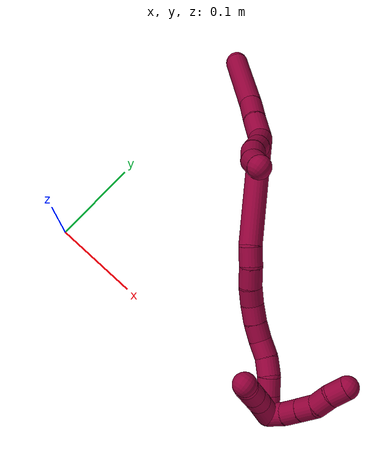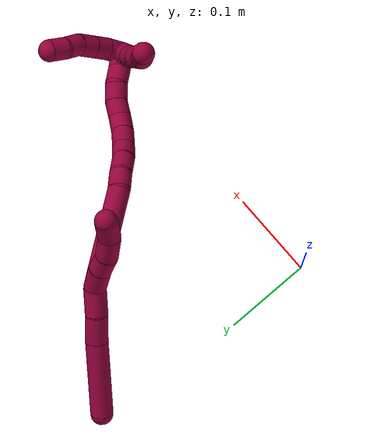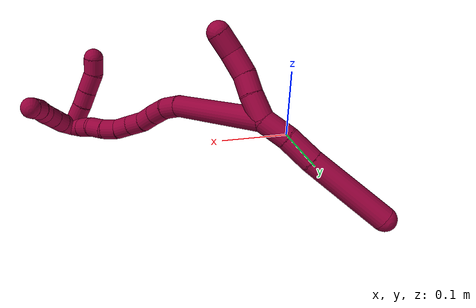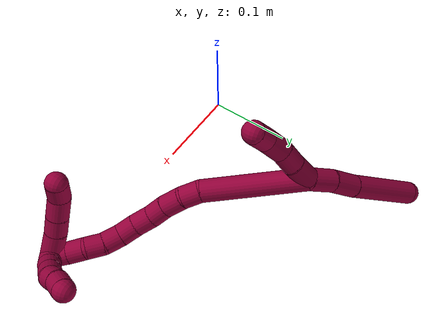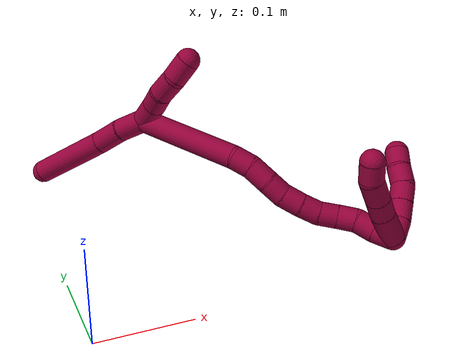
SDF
<sdf version="1.7">
 <world name="default">
  <model name="8">
   <static>0</static>
   <link name="8">
    <collision name="collision-cylinder-e_1_2_8">
     <pose>0.000574 0.012163 0.009348 -0.915533 0.037408 -0.018431</pose>
     <geometry><cylinder><radius>0.0125</radius><length>0.030701</length></cylinder></geometry>
     <surface>
      <friction><ode><mu>1.16</mu><mu2>1.16</mu2><slip1>0</slip1><slip2>0</slip2></ode></friction>
      <contact><ode><kp>1e+06</kp><kd>1</kd><max_vel>0</max_vel><min_depth>0.001</min_depth></ode></contact>
     </surface>
    </collision>
    <visual name="visual-cylinder-e_1_2_8">
     <pose>0.000574 0.012163 0.009348 -0.915533 0.037408 -0.018431</pose>
     <geometry><cylinder><radius>0.0125</radius><length>0.030701</length></cylinder></geometry>
     <material><ambient>0.584314 0 0.227451 1</ambient></material>
    </visual>
    <collision name="collision-cylinder-e_2_8_9">
     <pose>0.003992 0.03691 0.028366 -0.915583 0.177295 -0.087527</pose>
     <geometry><cylinder><radius>0.0125</radius><length>0.032246</length></cylinder></geometry>
     <surface>
      <friction><ode><mu>1.16</mu><mu2>1.16</mu2><slip1>0</slip1><slip2>0</slip2></ode></friction>
      <contact><ode><kp>1e+06</kp><kd>1</kd><max_vel>0</max_vel><min_depth>0.001</min_depth></ode></contact>
     </surface>
    </collision>
    <visual name="visual-cylinder-e_2_8_9">
     <pose>0.003992 0.03691 0.028366 -0.915583 0.177295 -0.087527</pose>
     <geometry><cylinder><radius>0.0125</radius><length>0.032246</length></cylinder></geometry>
     <material><ambient>0.584314 0 0.227451 1</ambient></material>
    </visual>
    <collision name="collision-cylinder-e_3_9_6">
     <pose>0.011055 0.08464 0.063363 -0.946366 0.097092 -0.049738</pose>
     <geometry><cylinder><radius>0.0125</radius><length>0.087052</length></cylinder></geometry>
     <surface>
      <friction><ode><mu>1.16</mu><mu2>1.16</mu2><slip1>0</slip1><slip2>0</slip2></ode></friction>
      <contact><ode><kp>1e+06</kp><kd>1</kd><max_vel>0</max_vel><min_depth>0.001</min_depth></ode></contact>
     </surface>
    </collision>
    <visual name="visual-cylinder-e_3_9_6">
     <pose>0.011055 0.08464 0.063363 -0.946366 0.097092 -0.049738</pose>
     <geometry><cylinder><radius>0.0125</radius><length>0.087052</length></cylinder></geometry>
     <material><ambient>0.584314 0 0.227451 1</ambient></material>
    </visual>
    <collision name="collision-cylinder-e_1_2_10">
     <pose>-0.007392 -0.008626 -0.007904 2.31255 -0.563462 -1.16363</pose>
     <geometry><cylinder><radius>0.0125</radius><length>0.027679</length></cylinder></geometry>
     <surface>
      <friction><ode><mu>1.16</mu><mu2>1.16</mu2><slip1>0</slip1><slip2>0</slip2></ode></friction>
      <contact><ode><kp>1e+06</kp><kd>1</kd><max_vel>0</max_vel><min_depth>0.001</min_depth></ode></contact>
     </surface>
    </collision>
    <visual name="visual-cylinder-e_1_2_10">
     <pose>-0.007392 -0.008626 -0.007904 2.31255 -0.563462 -1.16363</pose>
     <geometry><cylinder><radius>0.0125</radius><length>0.027679</length></cylinder></geometry>
     <material><ambient>0.584314 0 0.227451 1</ambient></material>
    </visual>
    <collision name="collision-cylinder-e_2_10_11">
     <pose>-0.021328 -0.023004 -0.022411 2.42499 -0.641821 -1.45192</pose>
     <geometry><cylinder><radius>0.0125</radius><length>0.021863</length></cylinder></geometry>
     <surface>
      <friction><ode><mu>1.16</mu><mu2>1.16</mu2><slip1>0</slip1><slip2>0</slip2></ode></friction>
      <contact><ode><kp>1e+06</kp><kd>1</kd><max_vel>0</max_vel><min_depth>0.001</min_depth></ode></contact>
     </surface>
    </collision>
    <visual name="visual-cylinder-e_2_10_11">
     <pose>-0.021328 -0.023004 -0.022411 2.42499 -0.641821 -1.45192</pose>
     <geometry><cylinder><radius>0.0125</radius><length>0.021863</length></cylinder></geometry>
     <material><ambient>0.584314 0 0.227451 1</ambient></material>
    </visual>
    <collision name="collision-cylinder-e_3_11_12">
     <pose>-0.033598 -0.037924 -0.036285 2.24127 -0.455049 -0.893604</pose>
     <geometry><cylinder><radius>0.0125</radius><length>0.026056</length></cylinder></geometry>
     <surface>
      <friction><ode><mu>1.16</mu><mu2>1.16</mu2><slip1>0</slip1><slip2>0</slip2></ode></friction>
      <contact><ode><kp>1e+06</kp><kd>1</kd><max_vel>0</max_vel><min_depth>0.001</min_depth></ode></contact>
     </surface>
    </collision>
    <visual name="visual-cylinder-e_3_11_12">
     <pose>-0.033598 -0.037924 -0.036285 2.24127 -0.455049 -0.893604</pose>
     <geometry><cylinder><radius>0.0125</radius><length>0.026056</length></cylinder></geometry>
     <material><ambient>0.584314 0 0.227451 1</ambient></material>
    </visual>
    <collision name="collision-cylinder-e_4_12_5">
     <pose>-0.044293 -0.057517 -0.047497 1.9322 -0.419429 -0.597556</pose>
     <geometry><cylinder><radius>0.0125</radius><length>0.024402</length></cylinder></geometry>
     <surface>
      <friction><ode><mu>1.16</mu><mu2>1.16</mu2><slip1>0</slip1><slip2>0</slip2></ode></friction>
      <contact><ode><kp>1e+06</kp><kd>1</kd><max_vel>0</max_vel><min_depth>0.001</min_depth></ode></contact>
     </surface>
    </collision>
    <visual name="visual-cylinder-e_4_12_5">
     <pose>-0.044293 -0.057517 -0.047497 1.9322 -0.419429 -0.597556</pose>
     <geometry><cylinder><radius>0.0125</radius><length>0.024402</length></cylinder></geometry>
     <material><ambient>0.584314 0 0.227451 1</ambient></material>
    </visual>
    <collision name="collision-cylinder-e_1_2_13">
     <pose>0.022738 -0.019635 -0.048776 2.75888 0.40816 1.63684</pose>
     <geometry><cylinder><radius>0.0125</radius><length>0.114572</length></cylinder></geometry>
     <surface>
      <friction><ode><mu>1.16</mu><mu2>1.16</mu2><slip1>0</slip1><slip2>0</slip2></ode></friction>
      <contact><ode><kp>1e+06</kp><kd>1</kd><max_vel>0</max_vel><min_depth>0.001</min_depth></ode></contact>
     </surface>
    </collision>
    <visual name="visual-cylinder-e_1_2_13">
     <pose>0.022738 -0.019635 -0.048776 2.75888 0.40816 1.63684</pose>
     <geometry><cylinder><radius>0.0125</radius><length>0.114572</length></cylinder></geometry>
     <material><ambient>0.584314 0 0.227451 1</ambient></material>
    </visual>
    <collision name="collision-cylinder-e_2_13_14">
     <pose>0.0519 -0.042307 -0.105147 2.7612 0.665728 2.12541</pose>
     <geometry><cylinder><radius>0.0125</radius><length>0.020801</length></cylinder></geometry>
     <surface>
      <friction><ode><mu>1.16</mu><mu2>1.16</mu2><slip1>0</slip1><slip2>0</slip2></ode></friction>
      <contact><ode><kp>1e+06</kp><kd>1</kd><max_vel>0</max_vel><min_depth>0.001</min_depth></ode></contact>
     </surface>
    </collision>
    <visual name="visual-cylinder-e_2_13_14">
     <pose>0.0519 -0.042307 -0.105147 2.7612 0.665728 2.12541</pose>
     <geometry><cylinder><radius>0.0125</radius><length>0.020801</length></cylinder></geometry>
     <material><ambient>0.584314 0 0.227451 1</ambient></material>
    </visual>
    <collision name="collision-cylinder-e_3_14_15">
     <pose>0.066781 -0.046327 -0.120386 3.01376 0.831812 2.85377</pose>
     <geometry><cylinder><radius>0.0125</radius><length>0.022885</length></cylinder></geometry>
     <surface>
      <friction><ode><mu>1.16</mu><mu2>1.16</mu2><slip1>0</slip1><slip2>0</slip2></ode></friction>
      <contact><ode><kp>1e+06</kp><kd>1</kd><max_vel>0</max_vel><min_depth>0.001</min_depth></ode></contact>
     </surface>
    </collision>
    <visual name="visual-cylinder-e_3_14_15">
     <pose>0.066781 -0.046327 -0.120386 3.01376 0.831812 2.85377</pose>
     <geometry><cylinder><radius>0.0125</radius><length>0.022885</length></cylinder></geometry>
     <material><ambient>0.584314 0 0.227451 1</ambient></material>
    </visual>
    <collision name="collision-cylinder-e_4_15_16">
     <pose>0.083572 -0.048442 -0.133711 2.94474 0.963418 2.76823</pose>
     <geometry><cylinder><radius>0.0125</radius><length>0.020298</length></cylinder></geometry>
     <surface>
      <friction><ode><mu>1.16</mu><mu2>1.16</mu2><slip1>0</slip1><slip2>0</slip2></ode></friction>
      <contact><ode><kp>1e+06</kp><kd>1</kd><max_vel>0</max_vel><min_depth>0.001</min_depth></ode></contact>
     </surface>
    </collision>
    <visual name="visual-cylinder-e_4_15_16">
     <pose>0.083572 -0.048442 -0.133711 2.94474 0.963418 2.76823</pose>
     <geometry><cylinder><radius>0.0125</radius><length>0.020298</length></cylinder></geometry>
     <material><ambient>0.584314 0 0.227451 1</ambient></material>
    </visual>
    <collision name="collision-cylinder-e_5_16_17">
     <pose>0.099422 -0.052924 -0.145814 2.66095 0.803809 2.0956</pose>
     <geometry><cylinder><radius>0.0125</radius><length>0.020878</length></cylinder></geometry>
     <surface>
      <friction><ode><mu>1.16</mu><mu2>1.16</mu2><slip1>0</slip1><slip2>0</slip2></ode></friction>
      <contact><ode><kp>1e+06</kp><kd>1</kd><max_vel>0</max_vel><min_depth>0.001</min_depth></ode></contact>
     </surface>
    </collision>
    <visual name="visual-cylinder-e_5_16_17">
     <pose>0.099422 -0.052924 -0.145814 2.66095 0.803809 2.0956</pose>
     <geometry><cylinder><radius>0.0125</radius><length>0.020878</length></cylinder></geometry>
     <material><ambient>0.584314 0 0.227451 1</ambient></material>
    </visual>
    <collision name="collision-cylinder-e_6_17_18">
     <pose>0.114423 -0.060211 -0.157715 2.5183 0.837293 1.88829</pose>
     <geometry><cylinder><radius>0.0125</radius><length>0.020152</length></cylinder></geometry>
     <surface>
      <friction><ode><mu>1.16</mu><mu2>1.16</mu2><slip1>0</slip1><slip2>0</slip2></ode></friction>
      <contact><ode><kp>1e+06</kp><kd>1</kd><max_vel>0</max_vel><min_depth>0.001</min_depth></ode></contact>
     </surface>
    </collision>
    <visual name="visual-cylinder-e_6_17_18">
     <pose>0.114423 -0.060211 -0.157715 2.5183 0.837293 1.88829</pose>
     <geometry><cylinder><radius>0.0125</radius><length>0.020152</length></cylinder></geometry>
     <material><ambient>0.584314 0 0.227451 1</ambient></material>
    </visual>
    <collision name="collision-cylinder-e_7_18_19">
     <pose>0.127673 -0.070211 -0.168714 2.3096 0.612801 1.24292</pose>
     <geometry><cylinder><radius>0.0125</radius><length>0.020048</length></cylinder></geometry>
     <surface>
      <friction><ode><mu>1.16</mu><mu2>1.16</mu2><slip1>0</slip1><slip2>0</slip2></ode></friction>
      <contact><ode><kp>1e+06</kp><kd>1</kd><max_vel>0</max_vel><min_depth>0.001</min_depth></ode></contact>
     </surface>
    </collision>
    <visual name="visual-cylinder-e_7_18_19">
     <pose>0.127673 -0.070211 -0.168714 2.3096 0.612801 1.24292</pose>
     <geometry><cylinder><radius>0.0125</radius><length>0.020048</length></cylinder></geometry>
     <material><ambient>0.584314 0 0.227451 1</ambient></material>
    </visual>
    <collision name="collision-cylinder-e_8_19_20">
     <pose>0.13768 -0.081796 -0.18156 2.49543 0.433114 1.1627</pose>
     <geometry><cylinder><radius>0.0125</radius><length>0.020212</length></cylinder></geometry>
     <surface>
      <friction><ode><mu>1.16</mu><mu2>1.16</mu2><slip1>0</slip1><slip2>0</slip2></ode></friction>
      <contact><ode><kp>1e+06</kp><kd>1</kd><max_vel>0</max_vel><min_depth>0.001</min_depth></ode></contact>
     </surface>
    </collision>
    <visual name="visual-cylinder-e_8_19_20">
     <pose>0.13768 -0.081796 -0.18156 2.49543 0.433114 1.1627</pose>
     <geometry><cylinder><radius>0.0125</radius><length>0.020212</length></cylinder></geometry>
     <material><ambient>0.584314 0 0.227451 1</ambient></material>
    </visual>
    <collision name="collision-cylinder-e_9_20_21">
     <pose>0.147539 -0.089956 -0.196823 2.82096 0.591328 2.1655</pose>
     <geometry><cylinder><radius>0.0125</radius><length>0.020155</length></cylinder></geometry>
     <surface>
      <friction><ode><mu>1.16</mu><mu2>1.16</mu2><slip1>0</slip1><slip2>0</slip2></ode></friction>
      <contact><ode><kp>1e+06</kp><kd>1</kd><max_vel>0</max_vel><min_depth>0.001</min_depth></ode></contact>
     </surface>
    </collision>
    <visual name="visual-cylinder-e_9_20_21">
     <pose>0.147539 -0.089956 -0.196823 2.82096 0.591328 2.1655</pose>
     <geometry><cylinder><radius>0.0125</radius><length>0.020155</length></cylinder></geometry>
     <material><ambient>0.584314 0 0.227451 1</ambient></material>
    </visual>
    <collision name="collision-cylinder-e_10_21_1">
     <pose>0.15763 -0.096467 -0.212824 2.69365 0.463755 1.60671</pose>
     <geometry><cylinder><radius>0.0125</radius><length>0.02</length></cylinder></geometry>
     <surface>
      <friction><ode><mu>1.16</mu><mu2>1.16</mu2><slip1>0</slip1><slip2>0</slip2></ode></friction>
      <contact><ode><kp>1e+06</kp><kd>1</kd><max_vel>0</max_vel><min_depth>0.001</min_depth></ode></contact>
     </surface>
    </collision>
    <visual name="visual-cylinder-e_10_21_1">
     <pose>0.15763 -0.096467 -0.212824 2.69365 0.463755 1.60671</pose>
     <geometry><cylinder><radius>0.0125</radius><length>0.02</length></cylinder></geometry>
     <material><ambient>0.584314 0 0.227451 1</ambient></material>
    </visual>
    <collision name="collision-cylinder-e_1_1_22">
     <pose>0.161382 -0.10898 -0.215903 1.0477 -0.072248 -0.041749</pose>
     <geometry><cylinder><radius>0.0125</radius><length>0.02</length></cylinder></geometry>
     <surface>
      <friction><ode><mu>1.16</mu><mu2>1.16</mu2><slip1>0</slip1><slip2>0</slip2></ode></friction>
      <contact><ode><kp>1e+06</kp><kd>1</kd><max_vel>0</max_vel><min_depth>0.001</min_depth></ode></contact>
     </surface>
    </collision>
    <visual name="visual-cylinder-e_1_1_22">
     <pose>0.161382 -0.10898 -0.215903 1.0477 -0.072248 -0.041749</pose>
     <geometry><cylinder><radius>0.0125</radius><length>0.02</length></cylinder></geometry>
     <material><ambient>0.584314 0 0.227451 1</ambient></material>
    </visual>
    <collision name="collision-cylinder-e_2_22_23">
     <pose>0.158203 -0.125534 -0.205322 0.95502 -0.248215 -0.128924</pose>
     <geometry><cylinder><radius>0.0125</radius><length>0.02</length></cylinder></geometry>
     <surface>
      <friction><ode><mu>1.16</mu><mu2>1.16</mu2><slip1>0</slip1><slip2>0</slip2></ode></friction>
      <contact><ode><kp>1e+06</kp><kd>1</kd><max_vel>0</max_vel><min_depth>0.001</min_depth></ode></contact>
     </surface>
    </collision>
    <visual name="visual-cylinder-e_2_22_23">
     <pose>0.158203 -0.125534 -0.205322 0.95502 -0.248215 -0.128924</pose>
     <geometry><cylinder><radius>0.0125</radius><length>0.02</length></cylinder></geometry>
     <material><ambient>0.584314 0 0.227451 1</ambient></material>
    </visual>
    <collision name="collision-cylinder-e_3_23_24">
     <pose>0.153346 -0.141332 -0.194061 0.948096 -0.242423 -0.12483</pose>
     <geometry><cylinder><radius>0.0125</radius><length>0.02</length></cylinder></geometry>
     <surface>
      <friction><ode><mu>1.16</mu><mu2>1.16</mu2><slip1>0</slip1><slip2>0</slip2></ode></friction>
      <contact><ode><kp>1e+06</kp><kd>1</kd><max_vel>0</max_vel><min_depth>0.001</min_depth></ode></contact>
     </surface>
    </collision>
    <visual name="visual-cylinder-e_3_23_24">
     <pose>0.153346 -0.141332 -0.194061 0.948096 -0.242423 -0.12483</pose>
     <geometry><cylinder><radius>0.0125</radius><length>0.02</length></cylinder></geometry>
     <material><ambient>0.584314 0 0.227451 1</ambient></material>
    </visual>
    <collision name="collision-cylinder-e_4_24_25">
     <pose>0.147371 -0.154767 -0.180887 0.636193 -0.365498 -0.121559</pose>
     <geometry><cylinder><radius>0.0125</radius><length>0.02</length></cylinder></geometry>
     <surface>
      <friction><ode><mu>1.16</mu><mu2>1.16</mu2><slip1>0</slip1><slip2>0</slip2></ode></friction>
      <contact><ode><kp>1e+06</kp><kd>1</kd><max_vel>0</max_vel><min_depth>0.001</min_depth></ode></contact>
     </surface>
    </collision>
    <visual name="visual-cylinder-e_4_24_25">
     <pose>0.147371 -0.154767 -0.180887 0.636193 -0.365498 -0.121559</pose>
     <geometry><cylinder><radius>0.0125</radius><length>0.02</length></cylinder></geometry>
     <material><ambient>0.584314 0 0.227451 1</ambient></material>
    </visual>
    <collision name="collision-cylinder-e_5_25_4">
     <pose>0.14214 -0.166514 -0.165704 0.679619 -0.16646 -0.058967</pose>
     <geometry><cylinder><radius>0.0125</radius><length>0.02</length></cylinder></geometry>
     <surface>
      <friction><ode><mu>1.16</mu><mu2>1.16</mu2><slip1>0</slip1><slip2>0</slip2></ode></friction>
      <contact><ode><kp>1e+06</kp><kd>1</kd><max_vel>0</max_vel><min_depth>0.001</min_depth></ode></contact>
     </surface>
    </collision>
    <visual name="visual-cylinder-e_5_25_4">
     <pose>0.14214 -0.166514 -0.165704 0.679619 -0.16646 -0.058967</pose>
     <geometry><cylinder><radius>0.0125</radius><length>0.02</length></cylinder></geometry>
     <material><ambient>0.584314 0 0.227451 1</ambient></material>
    </visual>
    <collision name="collision-cylinder-e_1_1_26">
     <pose>0.145626 -0.102207 -0.220002 1.1288 -1.44608 -1.01897</pose>
     <geometry><cylinder><radius>0.0125</radius><length>0.033212</length></cylinder></geometry>
     <surface>
      <friction><ode><mu>1.16</mu><mu2>1.16</mu2><slip1>0</slip1><slip2>0</slip2></ode></friction>
      <contact><ode><kp>1e+06</kp><kd>1</kd><max_vel>0</max_vel><min_depth>0.001</min_depth></ode></contact>
     </surface>
    </collision>
    <visual name="visual-cylinder-e_1_1_26">
     <pose>0.145626 -0.102207 -0.220002 1.1288 -1.44608 -1.01897</pose>
     <geometry><cylinder><radius>0.0125</radius><length>0.033212</length></cylinder></geometry>
     <material><ambient>0.584314 0 0.227451 1</ambient></material>
    </visual>
    <collision name="collision-cylinder-e_2_26_27">
     <pose>0.118935 -0.105854 -0.219229 1.6325 -1.39796 -1.45907</pose>
     <geometry><cylinder><radius>0.0125</radius><length>0.020738</length></cylinder></geometry>
     <surface>
      <friction><ode><mu>1.16</mu><mu2>1.16</mu2><slip1>0</slip1><slip2>0</slip2></ode></friction>
      <contact><ode><kp>1e+06</kp><kd>1</kd><max_vel>0</max_vel><min_depth>0.001</min_depth></ode></contact>
     </surface>
    </collision>
    <visual name="visual-cylinder-e_2_26_27">
     <pose>0.118935 -0.105854 -0.219229 1.6325 -1.39796 -1.45907</pose>
     <geometry><cylinder><radius>0.0125</radius><length>0.020738</length></cylinder></geometry>
     <material><ambient>0.584314 0 0.227451 1</ambient></material>
    </visual>
    <collision name="collision-cylinder-e_3_27_28">
     <pose>0.096271 -0.109663 -0.219425 1.61346 -1.40913 -1.45138</pose>
     <geometry><cylinder><radius>0.0125</radius><length>0.025227</length></cylinder></geometry>
     <surface>
      <friction><ode><mu>1.16</mu><mu2>1.16</mu2><slip1>0</slip1><slip2>0</slip2></ode></friction>
      <contact><ode><kp>1e+06</kp><kd>1</kd><max_vel>0</max_vel><min_depth>0.001</min_depth></ode></contact>
     </surface>
    </collision>
    <visual name="visual-cylinder-e_3_27_28">
     <pose>0.096271 -0.109663 -0.219425 1.61346 -1.40913 -1.45138</pose>
     <geometry><cylinder><radius>0.0125</radius><length>0.025227</length></cylinder></geometry>
     <material><ambient>0.584314 0 0.227451 1</ambient></material>
    </visual>
    <collision name="collision-cylinder-e_4_28_3">
     <pose>0.074674 -0.116633 -0.220039 1.67717 -1.07319 -1.16912</pose>
     <geometry><cylinder><radius>0.0125</radius><length>0.020823</length></cylinder></geometry>
     <surface>
      <friction><ode><mu>1.16</mu><mu2>1.16</mu2><slip1>0</slip1><slip2>0</slip2></ode></friction>
      <contact><ode><kp>1e+06</kp><kd>1</kd><max_vel>0</max_vel><min_depth>0.001</min_depth></ode></contact>
     </surface>
    </collision>
    <visual name="visual-cylinder-e_4_28_3">
     <pose>0.074674 -0.116633 -0.220039 1.67717 -1.07319 -1.16912</pose>
     <geometry><cylinder><radius>0.0125</radius><length>0.020823</length></cylinder></geometry>
     <material><ambient>0.584314 0 0.227451 1</ambient></material>
    </visual>
    <collision name="collision-sphere-3">
     <pose>0.065525 -0.121574 -0.220567 0 -0 0</pose>
     <geometry><sphere><radius>0.0125</radius></sphere></geometry>
     <surface>
      <friction><ode><mu>1.16</mu><mu2>1.16</mu2><slip1>0</slip1><slip2>0</slip2></ode></friction>
      <contact><ode><kp>1e+06</kp><kd>1</kd><max_vel>0</max_vel><min_depth>0.001</min_depth></ode></contact>
     </surface>
    </collision>
    <visual name="visual-sphere-3">
     <pose>0.065525 -0.121574 -0.220567 0 -0 0</pose>
     <geometry><sphere><radius>0.0125</radius></sphere></geometry>
     <material><ambient>0.584314 0 0.227451 1</ambient></material>
    </visual>
    <collision name="collision-sphere-28">
     <pose>0.083822 -0.111691 -0.219512 0 -0 0</pose>
     <geometry><sphere><radius>0.0125</radius></sphere></geometry>
     <surface>
      <friction><ode><mu>1.16</mu><mu2>1.16</mu2><slip1>0</slip1><slip2>0</slip2></ode></friction>
      <contact><ode><kp>1e+06</kp><kd>1</kd><max_vel>0</max_vel><min_depth>0.001</min_depth></ode></contact>
     </surface>
    </collision>
    <visual name="visual-sphere-28">
     <pose>0.083822 -0.111691 -0.219512 0 -0 0</pose>
     <geometry><sphere><radius>0.0125</radius></sphere></geometry>
     <material><ambient>0.584314 0 0.227451 1</ambient></material>
    </visual>
    <collision name="collision-sphere-27">
     <pose>0.10872 -0.107634 -0.219339 0 -0 0</pose>
     <geometry><sphere><radius>0.0125</radius></sphere></geometry>
     <surface>
      <friction><ode><mu>1.16</mu><mu2>1.16</mu2><slip1>0</slip1><slip2>0</slip2></ode></friction>
      <contact><ode><kp>1e+06</kp><kd>1</kd><max_vel>0</max_vel><min_depth>0.001</min_depth></ode></contact>
     </surface>
    </collision>
    <visual name="visual-sphere-27">
     <pose>0.10872 -0.107634 -0.219339 0 -0 0</pose>
     <geometry><sphere><radius>0.0125</radius></sphere></geometry>
     <material><ambient>0.584314 0 0.227451 1</ambient></material>
    </visual>
    <collision name="collision-sphere-26">
     <pose>0.129149 -0.104075 -0.219119 0 -0 0</pose>
     <geometry><sphere><radius>0.0125</radius></sphere></geometry>
     <surface>
      <friction><ode><mu>1.16</mu><mu2>1.16</mu2><slip1>0</slip1><slip2>0</slip2></ode></friction>
      <contact><ode><kp>1e+06</kp><kd>1</kd><max_vel>0</max_vel><min_depth>0.001</min_depth></ode></contact>
     </surface>
    </collision>
    <visual name="visual-sphere-26">
     <pose>0.129149 -0.104075 -0.219119 0 -0 0</pose>
     <geometry><sphere><radius>0.0125</radius></sphere></geometry>
     <material><ambient>0.584314 0 0.227451 1</ambient></material>
    </visual>
    <collision name="collision-sphere-4">
     <pose>0.140483 -0.172712 -0.158033 0 -0 0</pose>
     <geometry><sphere><radius>0.0125</radius></sphere></geometry>
     <surface>
      <friction><ode><mu>1.16</mu><mu2>1.16</mu2><slip1>0</slip1><slip2>0</slip2></ode></friction>
      <contact><ode><kp>1e+06</kp><kd>1</kd><max_vel>0</max_vel><min_depth>0.001</min_depth></ode></contact>
     </surface>
    </collision>
    <visual name="visual-sphere-4">
     <pose>0.140483 -0.172712 -0.158033 0 -0 0</pose>
     <geometry><sphere><radius>0.0125</radius></sphere></geometry>
     <material><ambient>0.584314 0 0.227451 1</ambient></material>
    </visual>
    <collision name="collision-sphere-25">
     <pose>0.143797 -0.160316 -0.173375 0 -0 0</pose>
     <geometry><sphere><radius>0.0125</radius></sphere></geometry>
     <surface>
      <friction><ode><mu>1.16</mu><mu2>1.16</mu2><slip1>0</slip1><slip2>0</slip2></ode></friction>
      <contact><ode><kp>1e+06</kp><kd>1</kd><max_vel>0</max_vel><min_depth>0.001</min_depth></ode></contact>
     </surface>
    </collision>
    <visual name="visual-sphere-25">
     <pose>0.143797 -0.160316 -0.173375 0 -0 0</pose>
     <geometry><sphere><radius>0.0125</radius></sphere></geometry>
     <material><ambient>0.584314 0 0.227451 1</ambient></material>
    </visual>
    <collision name="collision-sphere-24">
     <pose>0.150945 -0.149218 -0.188399 0 -0 0</pose>
     <geometry><sphere><radius>0.0125</radius></sphere></geometry>
     <surface>
      <friction><ode><mu>1.16</mu><mu2>1.16</mu2><slip1>0</slip1><slip2>0</slip2></ode></friction>
      <contact><ode><kp>1e+06</kp><kd>1</kd><max_vel>0</max_vel><min_depth>0.001</min_depth></ode></contact>
     </surface>
    </collision>
    <visual name="visual-sphere-24">
     <pose>0.150945 -0.149218 -0.188399 0 -0 0</pose>
     <geometry><sphere><radius>0.0125</radius></sphere></geometry>
     <material><ambient>0.584314 0 0.227451 1</ambient></material>
    </visual>
    <collision name="collision-sphere-23">
     <pose>0.155746 -0.133447 -0.199723 0 -0 0</pose>
     <geometry><sphere><radius>0.0125</radius></sphere></geometry>
     <surface>
      <friction><ode><mu>1.16</mu><mu2>1.16</mu2><slip1>0</slip1><slip2>0</slip2></ode></friction>
      <contact><ode><kp>1e+06</kp><kd>1</kd><max_vel>0</max_vel><min_depth>0.001</min_depth></ode></contact>
     </surface>
    </collision>
    <visual name="visual-sphere-23">
     <pose>0.155746 -0.133447 -0.199723 0 -0 0</pose>
     <geometry><sphere><radius>0.0125</radius></sphere></geometry>
     <material><ambient>0.584314 0 0.227451 1</ambient></material>
    </visual>
    <collision name="collision-sphere-22">
     <pose>0.16066 -0.117621 -0.210921 0 -0 0</pose>
     <geometry><sphere><radius>0.0125</radius></sphere></geometry>
     <surface>
      <friction><ode><mu>1.16</mu><mu2>1.16</mu2><slip1>0</slip1><slip2>0</slip2></ode></friction>
      <contact><ode><kp>1e+06</kp><kd>1</kd><max_vel>0</max_vel><min_depth>0.001</min_depth></ode></contact>
     </surface>
    </collision>
    <visual name="visual-sphere-22">
     <pose>0.16066 -0.117621 -0.210921 0 -0 0</pose>
     <geometry><sphere><radius>0.0125</radius></sphere></geometry>
     <material><ambient>0.584314 0 0.227451 1</ambient></material>
    </visual>
    <collision name="collision-sphere-1">
     <pose>0.162103 -0.10034 -0.220886 0 -0 0</pose>
     <geometry><sphere><radius>0.0125</radius></sphere></geometry>
     <surface>
      <friction><ode><mu>1.16</mu><mu2>1.16</mu2><slip1>0</slip1><slip2>0</slip2></ode></friction>
      <contact><ode><kp>1e+06</kp><kd>1</kd><max_vel>0</max_vel><min_depth>0.001</min_depth></ode></contact>
     </surface>
    </collision>
    <visual name="visual-sphere-1">
     <pose>0.162103 -0.10034 -0.220886 0 -0 0</pose>
     <geometry><sphere><radius>0.0125</radius></sphere></geometry>
     <material><ambient>0.584314 0 0.227451 1</ambient></material>
    </visual>
    <collision name="collision-sphere-21">
     <pose>0.153157 -0.092593 -0.204763 0 -0 0</pose>
     <geometry><sphere><radius>0.0125</radius></sphere></geometry>
     <surface>
      <friction><ode><mu>1.16</mu><mu2>1.16</mu2><slip1>0</slip1><slip2>0</slip2></ode></friction>
      <contact><ode><kp>1e+06</kp><kd>1</kd><max_vel>0</max_vel><min_depth>0.001</min_depth></ode></contact>
     </surface>
    </collision>
    <visual name="visual-sphere-21">
     <pose>0.153157 -0.092593 -0.204763 0 -0 0</pose>
     <geometry><sphere><radius>0.0125</radius></sphere></geometry>
     <material><ambient>0.584314 0 0.227451 1</ambient></material>
    </visual>
    <collision name="collision-sphere-11">
     <pose>-0.027872 -0.028755 -0.029014 0 -0 0</pose>
     <geometry><sphere><radius>0.0125</radius></sphere></geometry>
     <surface>
      <friction><ode><mu>1.16</mu><mu2>1.16</mu2><slip1>0</slip1><slip2>0</slip2></ode></friction>
      <contact><ode><kp>1e+06</kp><kd>1</kd><max_vel>0</max_vel><min_depth>0.001</min_depth></ode></contact>
     </surface>
    </collision>
    <visual name="visual-sphere-11">
     <pose>-0.027872 -0.028755 -0.029014 0 -0 0</pose>
     <geometry><sphere><radius>0.0125</radius></sphere></geometry>
     <material><ambient>0.584314 0 0.227451 1</ambient></material>
    </visual>
    <collision name="collision-sphere-10">
     <pose>-0.014784 -0.017252 -0.015808 0 -0 0</pose>
     <geometry><sphere><radius>0.0125</radius></sphere></geometry>
     <surface>
      <friction><ode><mu>1.16</mu><mu2>1.16</mu2><slip1>0</slip1><slip2>0</slip2></ode></friction>
      <contact><ode><kp>1e+06</kp><kd>1</kd><max_vel>0</max_vel><min_depth>0.001</min_depth></ode></contact>
     </surface>
    </collision>
    <visual name="visual-sphere-10">
     <pose>-0.014784 -0.017252 -0.015808 0 -0 0</pose>
     <geometry><sphere><radius>0.0125</radius></sphere></geometry>
     <material><ambient>0.584314 0 0.227451 1</ambient></material>
    </visual>
    <collision name="collision-sphere-6">
     <pose>0.015274 0.119786 0.08869 0 -0 0</pose>
     <geometry><sphere><radius>0.0125</radius></sphere></geometry>
     <surface>
      <friction><ode><mu>1.16</mu><mu2>1.16</mu2><slip1>0</slip1><slip2>0</slip2></ode></friction>
      <contact><ode><kp>1e+06</kp><kd>1</kd><max_vel>0</max_vel><min_depth>0.001</min_depth></ode></contact>
     </surface>
    </collision>
    <visual name="visual-sphere-6">
     <pose>0.015274 0.119786 0.08869 0 -0 0</pose>
     <geometry><sphere><radius>0.0125</radius></sphere></geometry>
     <material><ambient>0.584314 0 0.227451 1</ambient></material>
    </visual>
    <collision name="collision-sphere-9">
     <pose>0.006835 0.049494 0.038036 0 -0 0</pose>
     <geometry><sphere><radius>0.0125</radius></sphere></geometry>
     <surface>
      <friction><ode><mu>1.16</mu><mu2>1.16</mu2><slip1>0</slip1><slip2>0</slip2></ode></friction>
      <contact><ode><kp>1e+06</kp><kd>1</kd><max_vel>0</max_vel><min_depth>0.001</min_depth></ode></contact>
     </surface>
    </collision>
    <visual name="visual-sphere-9">
     <pose>0.006835 0.049494 0.038036 0 -0 0</pose>
     <geometry><sphere><radius>0.0125</radius></sphere></geometry>
     <material><ambient>0.584314 0 0.227451 1</ambient></material>
    </visual>
    <collision name="collision-sphere-2">
     <geometry><sphere><radius>0.0125</radius></sphere></geometry>
     <surface>
      <friction><ode><mu>1.16</mu><mu2>1.16</mu2><slip1>0</slip1><slip2>0</slip2></ode></friction>
      <contact><ode><kp>1e+06</kp><kd>1</kd><max_vel>0</max_vel><min_depth>0.001</min_depth></ode></contact>
     </surface>
    </collision>
    <visual name="visual-sphere-2">
     <geometry><sphere><radius>0.0125</radius></sphere></geometry>
     <material><ambient>0.584314 0 0.227451 1</ambient></material>
    </visual>
    <collision name="collision-sphere-19">
     <pose>0.133439 -0.076273 -0.174236 0 -0 0</pose>
     <geometry><sphere><radius>0.0125</radius></sphere></geometry>
     <surface>
      <friction><ode><mu>1.16</mu><mu2>1.16</mu2><slip1>0</slip1><slip2>0</slip2></ode></friction>
      <contact><ode><kp>1e+06</kp><kd>1</kd><max_vel>0</max_vel><min_depth>0.001</min_depth></ode></contact>
     </surface>
    </collision>
    <visual name="visual-sphere-19">
     <pose>0.133439 -0.076273 -0.174236 0 -0 0</pose>
     <geometry><sphere><radius>0.0125</radius></sphere></geometry>
     <material><ambient>0.584314 0 0.227451 1</ambient></material>
    </visual>
    <collision name="collision-sphere-8">
     <pose>0.001148 0.024326 0.018695 0 -0 0</pose>
     <geometry><sphere><radius>0.0125</radius></sphere></geometry>
     <surface>
      <friction><ode><mu>1.16</mu><mu2>1.16</mu2><slip1>0</slip1><slip2>0</slip2></ode></friction>
      <contact><ode><kp>1e+06</kp><kd>1</kd><max_vel>0</max_vel><min_depth>0.001</min_depth></ode></contact>
     </surface>
    </collision>
    <visual name="visual-sphere-8">
     <pose>0.001148 0.024326 0.018695 0 -0 0</pose>
     <geometry><sphere><radius>0.0125</radius></sphere></geometry>
     <material><ambient>0.584314 0 0.227451 1</ambient></material>
    </visual>
    <collision name="collision-sphere-12">
     <pose>-0.039324 -0.047093 -0.043556 0 -0 0</pose>
     <geometry><sphere><radius>0.0125</radius></sphere></geometry>
     <surface>
      <friction><ode><mu>1.16</mu><mu2>1.16</mu2><slip1>0</slip1><slip2>0</slip2></ode></friction>
      <contact><ode><kp>1e+06</kp><kd>1</kd><max_vel>0</max_vel><min_depth>0.001</min_depth></ode></contact>
     </surface>
    </collision>
    <visual name="visual-sphere-12">
     <pose>-0.039324 -0.047093 -0.043556 0 -0 0</pose>
     <geometry><sphere><radius>0.0125</radius></sphere></geometry>
     <material><ambient>0.584314 0 0.227451 1</ambient></material>
    </visual>
    <collision name="collision-sphere-5">
     <pose>-0.049261 -0.06794 -0.051437 0 -0 0</pose>
     <geometry><sphere><radius>0.0125</radius></sphere></geometry>
     <surface>
      <friction><ode><mu>1.16</mu><mu2>1.16</mu2><slip1>0</slip1><slip2>0</slip2></ode></friction>
      <contact><ode><kp>1e+06</kp><kd>1</kd><max_vel>0</max_vel><min_depth>0.001</min_depth></ode></contact>
     </surface>
    </collision>
    <visual name="visual-sphere-5">
     <pose>-0.049261 -0.06794 -0.051437 0 -0 0</pose>
     <geometry><sphere><radius>0.0125</radius></sphere></geometry>
     <material><ambient>0.584314 0 0.227451 1</ambient></material>
    </visual>
    <collision name="collision-sphere-13">
     <pose>0.045476 -0.039271 -0.097552 0 -0 0</pose>
     <geometry><sphere><radius>0.0125</radius></sphere></geometry>
     <surface>
      <friction><ode><mu>1.16</mu><mu2>1.16</mu2><slip1>0</slip1><slip2>0</slip2></ode></friction>
      <contact><ode><kp>1e+06</kp><kd>1</kd><max_vel>0</max_vel><min_depth>0.001</min_depth></ode></contact>
     </surface>
    </collision>
    <visual name="visual-sphere-13">
     <pose>0.045476 -0.039271 -0.097552 0 -0 0</pose>
     <geometry><sphere><radius>0.0125</radius></sphere></geometry>
     <material><ambient>0.584314 0 0.227451 1</ambient></material>
    </visual>
    <collision name="collision-sphere-14">
     <pose>0.058323 -0.045344 -0.112742 0 -0 0</pose>
     <geometry><sphere><radius>0.0125</radius></sphere></geometry>
     <surface>
      <friction><ode><mu>1.16</mu><mu2>1.16</mu2><slip1>0</slip1><slip2>0</slip2></ode></friction>
      <contact><ode><kp>1e+06</kp><kd>1</kd><max_vel>0</max_vel><min_depth>0.001</min_depth></ode></contact>
     </surface>
    </collision>
    <visual name="visual-sphere-14">
     <pose>0.058323 -0.045344 -0.112742 0 -0 0</pose>
     <geometry><sphere><radius>0.0125</radius></sphere></geometry>
     <material><ambient>0.584314 0 0.227451 1</ambient></material>
    </visual>
    <collision name="collision-sphere-15">
     <pose>0.075238 -0.047309 -0.12803 0 -0 0</pose>
     <geometry><sphere><radius>0.0125</radius></sphere></geometry>
     <surface>
      <friction><ode><mu>1.16</mu><mu2>1.16</mu2><slip1>0</slip1><slip2>0</slip2></ode></friction>
      <contact><ode><kp>1e+06</kp><kd>1</kd><max_vel>0</max_vel><min_depth>0.001</min_depth></ode></contact>
     </surface>
    </collision>
    <visual name="visual-sphere-15">
     <pose>0.075238 -0.047309 -0.12803 0 -0 0</pose>
     <geometry><sphere><radius>0.0125</radius></sphere></geometry>
     <material><ambient>0.584314 0 0.227451 1</ambient></material>
    </visual>
    <collision name="collision-sphere-16">
     <pose>0.091906 -0.049575 -0.139391 0 -0 0</pose>
     <geometry><sphere><radius>0.0125</radius></sphere></geometry>
     <surface>
      <friction><ode><mu>1.16</mu><mu2>1.16</mu2><slip1>0</slip1><slip2>0</slip2></ode></friction>
      <contact><ode><kp>1e+06</kp><kd>1</kd><max_vel>0</max_vel><min_depth>0.001</min_depth></ode></contact>
     </surface>
    </collision>
    <visual name="visual-sphere-16">
     <pose>0.091906 -0.049575 -0.139391 0 -0 0</pose>
     <geometry><sphere><radius>0.0125</radius></sphere></geometry>
     <material><ambient>0.584314 0 0.227451 1</ambient></material>
    </visual>
    <collision name="collision-sphere-17">
     <pose>0.106939 -0.056274 -0.152238 0 -0 0</pose>
     <geometry><sphere><radius>0.0125</radius></sphere></geometry>
     <surface>
      <friction><ode><mu>1.16</mu><mu2>1.16</mu2><slip1>0</slip1><slip2>0</slip2></ode></friction>
      <contact><ode><kp>1e+06</kp><kd>1</kd><max_vel>0</max_vel><min_depth>0.001</min_depth></ode></contact>
     </surface>
    </collision>
    <visual name="visual-sphere-17">
     <pose>0.106939 -0.056274 -0.152238 0 -0 0</pose>
     <geometry><sphere><radius>0.0125</radius></sphere></geometry>
     <material><ambient>0.584314 0 0.227451 1</ambient></material>
    </visual>
    <collision name="collision-sphere-18">
     <pose>0.121908 -0.064149 -0.163192 0 -0 0</pose>
     <geometry><sphere><radius>0.0125</radius></sphere></geometry>
     <surface>
      <friction><ode><mu>1.16</mu><mu2>1.16</mu2><slip1>0</slip1><slip2>0</slip2></ode></friction>
      <contact><ode><kp>1e+06</kp><kd>1</kd><max_vel>0</max_vel><min_depth>0.001</min_depth></ode></contact>
     </surface>
    </collision>
    <visual name="visual-sphere-18">
     <pose>0.121908 -0.064149 -0.163192 0 -0 0</pose>
     <geometry><sphere><radius>0.0125</radius></sphere></geometry>
     <material><ambient>0.584314 0 0.227451 1</ambient></material>
    </visual>
    <collision name="collision-sphere-20">
     <pose>0.141922 -0.087319 -0.188883 0 -0 0</pose>
     <geometry><sphere><radius>0.0125</radius></sphere></geometry>
     <surface>
      <friction><ode><mu>1.16</mu><mu2>1.16</mu2><slip1>0</slip1><slip2>0</slip2></ode></friction>
      <contact><ode><kp>1e+06</kp><kd>1</kd><max_vel>0</max_vel><min_depth>0.001</min_depth></ode></contact>
     </surface>
    </collision>
    <visual name="visual-sphere-20">
     <pose>0.141922 -0.087319 -0.188883 0 -0 0</pose>
     <geometry><sphere><radius>0.0125</radius></sphere></geometry>
     <material><ambient>0.584314 0 0.227451 1</ambient></material>
    </visual>
    <inertial>
     <pose>0.063702 -0.044298 -0.096062 0 -0 0</pose>
     <mass>0.75</mass>
     <inertia>
      <ixx>0.000182</ixx>
      <ixy>0</ixy>
      <ixz>0</ixz>
      <iyy>0.000192</iyy>
      <iyz>0</iyz>
      <izz>-5.1e-05</izz>
     </inertia>
    </inertial>
   </link>
   <pose>0.116916 0.199995 0.122354 -1.57726 0.987337 0.09966</pose>
  </model>
 </world>
</sdf>
